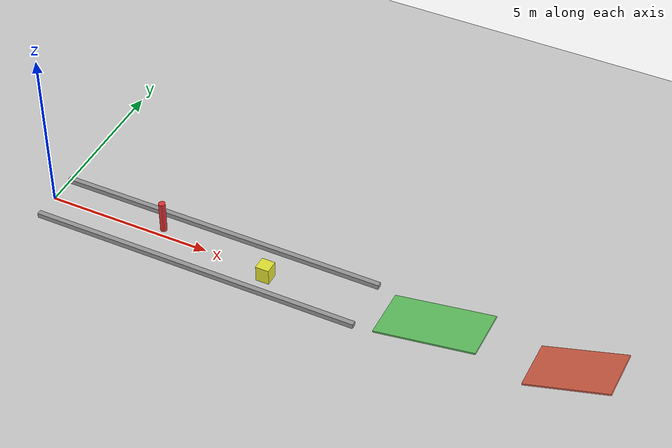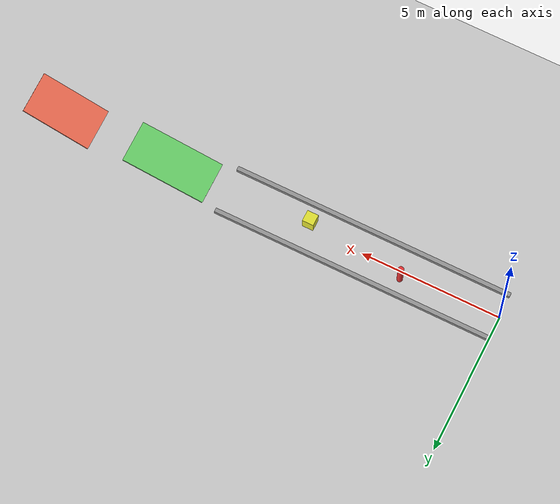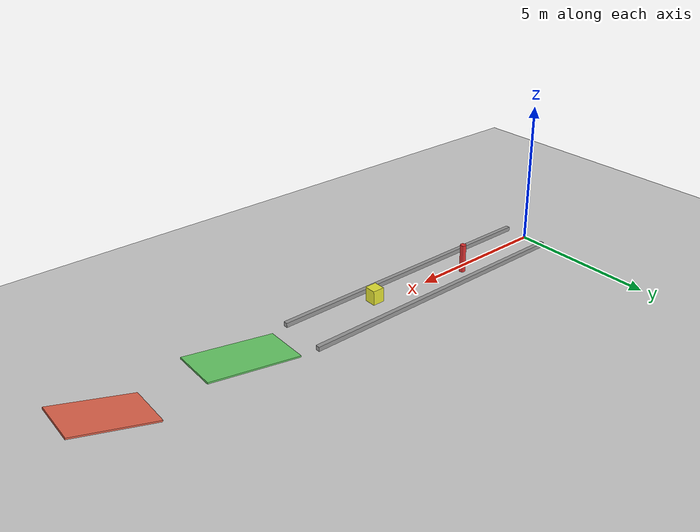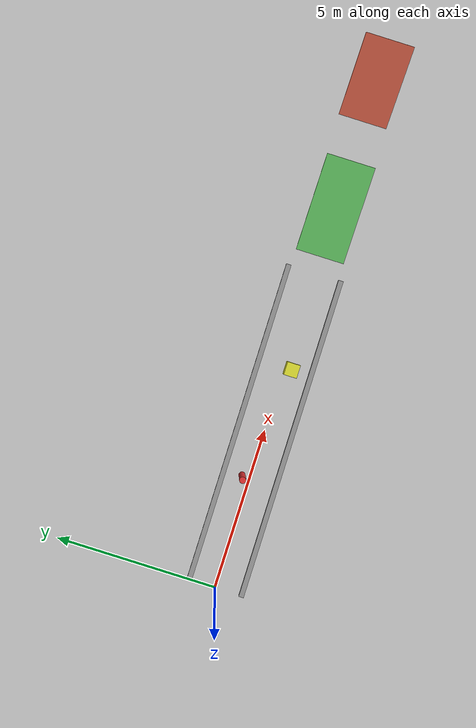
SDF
<?xml version="1.0" ?>
<sdf version="1.6">
  <world name="mini_plus_test_track">

    <!-- Iluminación y Sol -->
    <include>
      <uri>model://sun</uri>
    </include>

    <!-- Plano Horizontal Base -->
    <include>
      <uri>model://ground_plane</uri>
    </include>

    <physics type="ode">
      <max_step_size>0.002</max_step_size>
      <real_time_factor>1.0</real_time_factor>
      <real_time_update_rate>500</real_time_update_rate>
    </physics>

    <!-- Coordenadas Geográficas de Referencia (Ciudad de México / Hipódromo) -->
    <spherical_coordinates>
      <surface_model>EARTH_WGS84</surface_model>
      <latitude_deg>19.432608</latitude_deg>
      <longitude_deg>-99.133209</longitude_deg>
      <elevation>2240.0</elevation>
      <heading_deg>0.0</heading_deg>
    </spherical_coordinates>

    <!-- 1. CORREDOR TIPO VEREDA (1.5 m de ancho con bordillos laterales)         -->
    <!-- Bordillo Izquierdo (y = +0.80 m, largo = 10 m, alto = 0.15 m) -->
    <model name="curb_left">
      <static>true</static>
      <pose>5.0 0.825 0.075 0 0 0</pose>
      <link name="link">
        <collision name="collision">
          <geometry>
            <box><size>10.0 0.15 0.15</size></box>
          </geometry>
        </collision>
        <visual name="visual">
          <geometry>
            <box><size>10.0 0.15 0.15</size></box>
          </geometry>
          <material>
            <ambient>0.5 0.5 0.5 1</ambient>
            <diffuse>0.6 0.6 0.6 1</diffuse>
          </material>
        </visual>
      </link>
    </model>

    <!-- Bordillo Derecho (y = -0.80 m, largo = 10 m, alto = 0.15 m) -->
    <model name="curb_right">
      <static>true</static>
      <pose>5.0 -0.825 0.075 0 0 0</pose>
      <link name="link">
        <collision name="collision">
          <geometry>
            <box><size>10.0 0.15 0.15</size></box>
          </geometry>
        </collision>
        <visual name="visual">
          <geometry>
            <box><size>10.0 0.15 0.15</size></box>
          </geometry>
          <material>
            <ambient>0.5 0.5 0.5 1</ambient>
            <diffuse>0.6 0.6 0.6 1</diffuse>
          </material>
        </visual>
      </link>
    </model>

    <!-- 2. RAMPA 10° DE PENDIENTE (Validación Filtro Complementario y Subida)    -->
    <model name="ramp_10deg">
      <static>true</static>
      <!-- Largo de rampa = 3.0 m, ángulo = +10° (+0.1745 rad) -->
      <!-- Centro en x = 12.0 m, y = 0.0 m, elevación media = 0.26 m -->
      <pose>12.0 0.0 0.260 0 -0.174533 0</pose>
      <link name="link">
        <collision name="collision">
          <geometry>
            <box><size>3.0 1.5 0.05</size></box>
          </geometry>
        </collision>
        <visual name="visual">
          <geometry>
            <box><size>3.0 1.5 0.05</size></box>
          </geometry>
          <material>
            <ambient>0.3 0.7 0.3 1</ambient>
            <diffuse>0.4 0.8 0.4 1</diffuse>
          </material>
        </visual>
      </link>
    </model>

    <!-- 3. RAMPA 18° DE PENDIENTE (Pendiente Máxima Nominal del Mini+ V6.2)       -->
    <model name="ramp_18deg">
      <static>true</static>
      <!-- Largo de rampa = 2.5 m, ángulo = +18° (+0.3142 rad) -->
      <!-- Centro en x = 16.0 m, y = 0.0 m, elevación media = 0.386 m -->
      <pose>16.0 0.0 0.386 0 -0.314159 0</pose>
      <link name="link">
        <collision name="collision">
          <geometry>
            <box><size>2.5 1.5 0.05</size></box>
          </geometry>
        </collision>
        <visual name="visual">
          <geometry>
            <box><size>2.5 1.5 0.05</size></box>
          </geometry>
          <material>
            <ambient>0.8 0.3 0.2 1</ambient>
            <diffuse>0.9 0.4 0.3 1</diffuse>
          </material>
        </visual>
      </link>
    </model>

    <!-- 4. OBSTÁCULOS VERTICALES (Postes cilíndricos y cajas de prueba)          -->
    <!-- Poste cilíndrico en x = 3.5 m, y = +0.25 m -->
    <model name="obstacle_pole_1">
      <static>true</static>
      <pose>3.5 0.25 0.5 0 0 0</pose>
      <link name="link">
        <collision name="collision">
          <geometry>
            <cylinder><radius>0.10</radius><length>1.0</length></cylinder>
          </geometry>
        </collision>
        <visual name="visual">
          <geometry>
            <cylinder><radius>0.10</radius><length>1.0</length></cylinder>
          </geometry>
          <material>
            <ambient>0.9 0.1 0.1 1</ambient>
            <diffuse>0.9 0.2 0.2 1</diffuse>
          </material>
        </visual>
      </link>
    </model>

    <!-- Caja obstáculo en x = 7.0 m, y = -0.20 m -->
    <model name="obstacle_box_1">
      <static>true</static>
      <pose>7.0 -0.20 0.25 0 0 0</pose>
      <link name="link">
        <collision name="collision">
          <geometry>
            <box><size>0.40 0.40 0.50</size></box>
          </geometry>
        </collision>
        <visual name="visual">
          <geometry>
            <box><size>0.40 0.40 0.50</size></box>
          </geometry>
          <material>
            <ambient>0.8 0.8 0.1 1</ambient>
            <diffuse>0.9 0.9 0.2 1</diffuse>
          </material>
        </visual>
      </link>
    </model>

  </world>
</sdf>
